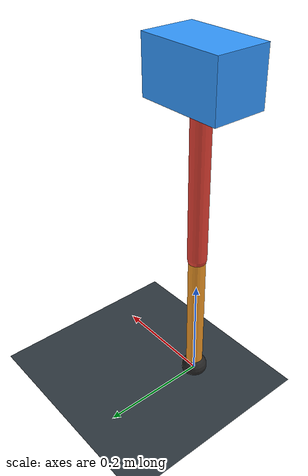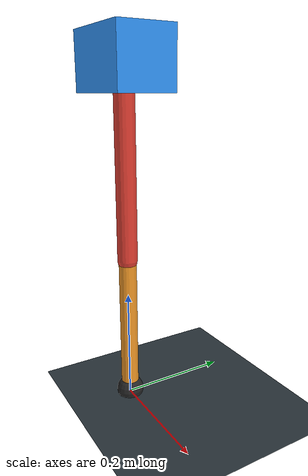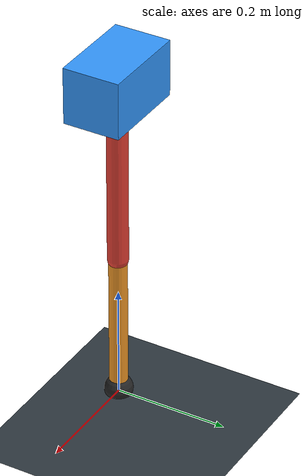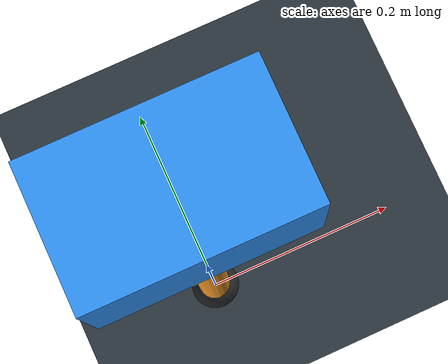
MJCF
<mujoco model="single_axis_two_bar">
  <compiler angle="radian" inertiafromgeom="true"/>
  <option timestep="0.001" integrator="implicitfast" gravity="0 0 -9.81"/>
  <default>
    <joint damping="0.08"/>
    <geom friction="1.2 0.01 0.0001" condim="3"/>
  </default>
  <worldbody>
    <geom name="floor" type="plane" size="5 5 0.1" rgba="0.18 0.22 0.25 1"/>
    <body name="carriage" pos="0 0 0.6020640440990414">
      <joint name="pole_slide" type="slide" axis="0 0 1"/>
      <geom name="payload" type="box" size="0.08 0.05 0.05" mass="2.1184112395031782" rgba="0.2 0.6 1 1"/>
      <body name="thigh" pos="0 0 0">
        <joint name="hip" type="hinge" axis="0 1 0"/>
        <geom name="thigh_link" type="capsule" fromto="0 0 0 0 0 -0.33521388942272196" size="0.018" mass="0.23884432567443403" rgba="0.9 0.25 0.2 1"/>
        <body name="shank" pos="0 0 -0.33521388942272196">
          <joint name="knee" type="hinge" axis="0 1 0"/>
          <geom name="shank_link" type="capsule" fromto="0 0 0 0 0 -0.2596974962463928" size="0.016" mass="0.18503789767520337" rgba="0.95 0.6 0.15 1"/>
          <geom name="foot" type="sphere" pos="0 0 -0.2596974962463928" size="0.025" mass="0.03" rgba="0.15 0.15 0.15 1"/>
          <site name="toe" pos="0 0 -0.2596974962463928" size="0.008"/>
        </body>
      </body>
    </body>
  </worldbody>
  <actuator>
    <motor name="hip_motor" joint="hip" ctrlrange="-26.749029962721107 26.749029962721107"/>
    <motor name="knee_motor" joint="knee" ctrlrange="-33.160951423296844 33.160951423296844"/>
  </actuator>
</mujoco>
